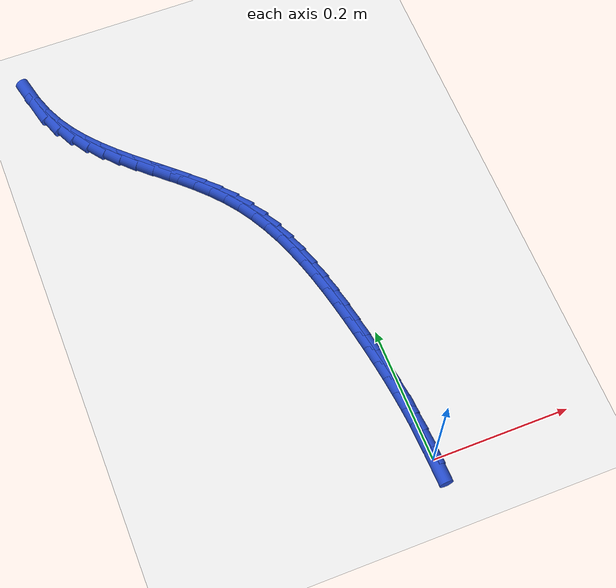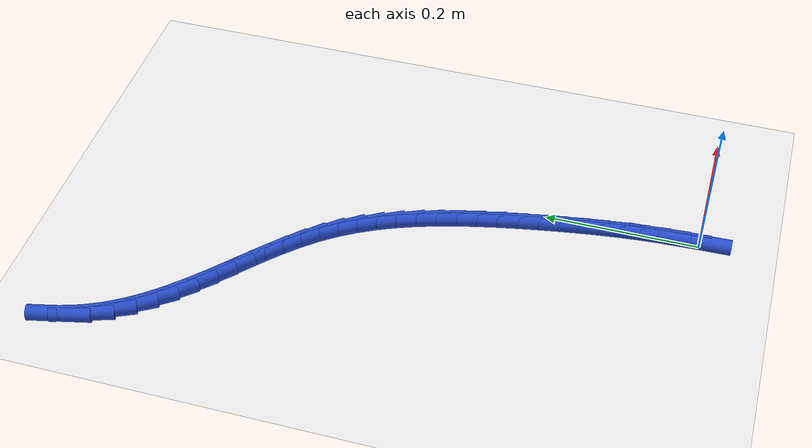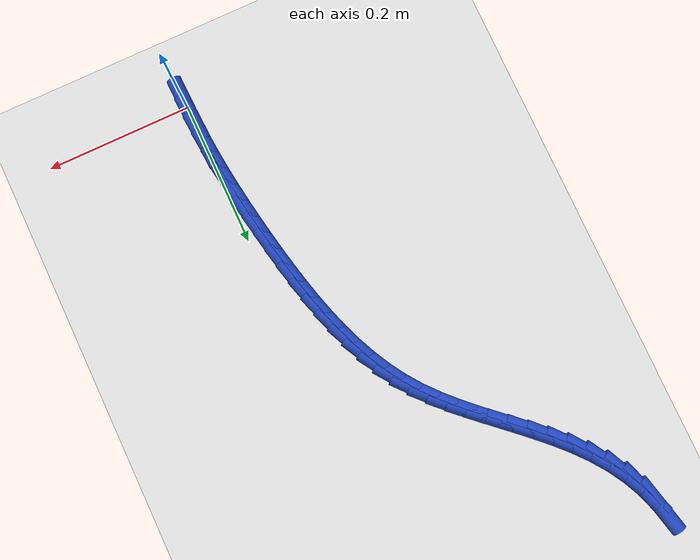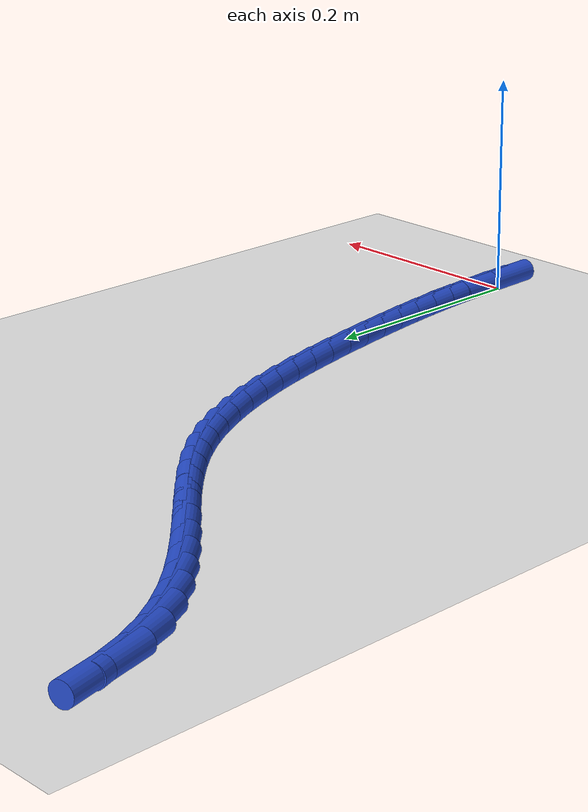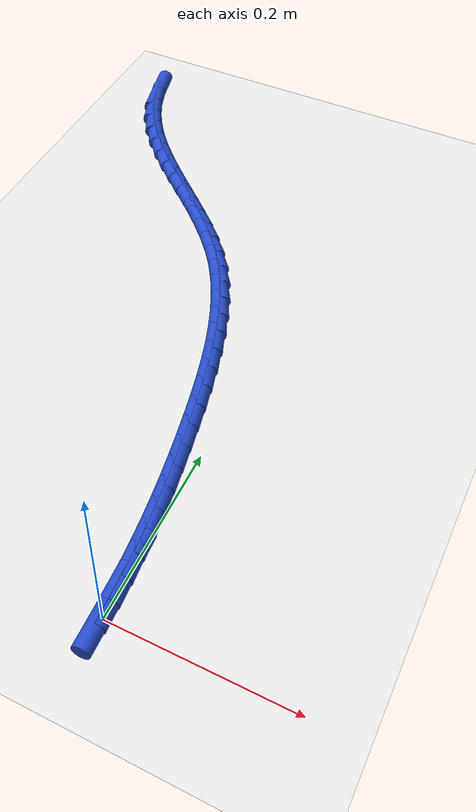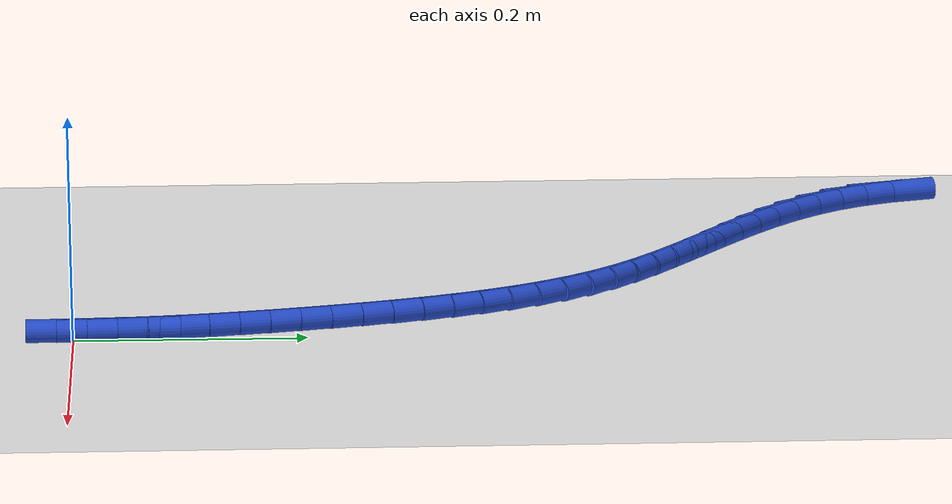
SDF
<sdf version="1.6">
 <world name="default">
  <model name="ground_plane">
   <static>1</static>
   <link name="link">
    <collision name="collision">
     <geometry><plane><normal>0 0 1</normal><size>100 100</size></plane></geometry>
     <surface><friction><ode><mu>100</mu><mu2>50</mu2></ode></friction></surface>
    </collision>
    <visual name="visual">
     <cast_shadows>0</cast_shadows>
     <geometry><plane><normal>0 0 1</normal><size>100 100</size></plane></geometry>
     <material>
      <script><uri>file://media/materials/scripts/gazebo.material</uri><name>Gazebo/WhiteGlow</name></script>
     </material>
    </visual>
   </link>
  </model>
  <model name="line">
   <link name="link_1">
    <pose>-0.0006734218720668165 0.025943897823569505 0.01 0 1.57 -1.5183345414615108</pose>
    <collision name="collision">
     <geometry><cylinder><radius>0.01</radius><length>0.08</length></cylinder></geometry>
    </collision>
    <visual name="visual">
     <material>
      <script><name>Gazebo/Blue</name><uri>file://media/materials/scripts/gazebo.material</uri></script>
     </material>
     <geometry><cylinder><radius>0.01</radius><length>0.08</length></cylinder></geometry>
    </visual>
   </link>
   <link name="link_2">
    <pose>-0.002030877806275513 0.051795293260185636 0.01 0 1.57 -1.4934831011588694</pose>
    <collision name="collision">
     <geometry><cylinder><radius>0.01</radius><length>0.08</length></cylinder></geometry>
    </collision>
    <visual name="visual">
     <material>
      <script><name>Gazebo/Blue</name><uri>file://media/materials/scripts/gazebo.material</uri></script>
     </material>
     <geometry><cylinder><radius>0.01</radius><length>0.08</length></cylinder></geometry>
    </visual>
   </link>
   <link name="link_3">
    <pose>-0.004028531694577257 0.0775822407005232 0.01 0 1.57 -1.4703987092895088</pose>
    <collision name="collision">
     <geometry><cylinder><radius>0.01</radius><length>0.08</length></cylinder></geometry>
    </collision>
    <visual name="visual">
     <material>
      <script><name>Gazebo/Blue</name><uri>file://media/materials/scripts/gazebo.material</uri></script>
     </material>
     <geometry><cylinder><radius>0.01</radius><length>0.08</length></cylinder></geometry>
    </visual>
   </link>
   <link name="link_4">
    <pose>-0.006622547428923207 0.10333279453525693 0.01 0 1.57 -1.4491669388248505</pose>
    <collision name="collision">
     <geometry><cylinder><radius>0.01</radius><length>0.08</length></cylinder></geometry>
    </collision>
    <visual name="visual">
     <material>
      <script><name>Gazebo/Blue</name><uri>file://media/materials/scripts/gazebo.material</uri></script>
     </material>
     <geometry><cylinder><radius>0.01</radius><length>0.08</length></cylinder></geometry>
    </visual>
   </link>
   <link name="link_5">
    <pose>-0.00976908890126453 0.1290750091550616 0.01 0 1.57 -1.4298521132547735</pose>
    <collision name="collision">
     <geometry><cylinder><radius>0.01</radius><length>0.08</length></cylinder></geometry>
    </collision>
    <visual name="visual">
     <material>
      <script><name>Gazebo/Blue</name><uri>file://media/materials/scripts/gazebo.material</uri></script>
     </material>
     <geometry><cylinder><radius>0.01</radius><length>0.08</length></cylinder></geometry>
    </visual>
   </link>
   <link name="link_6">
    <pose>-0.013424320003552398 0.15483693895061207 0.01 0 1.57 -1.4124987397937656</pose>
    <collision name="collision">
     <geometry><cylinder><radius>0.01</radius><length>0.08</length></cylinder></geometry>
    </collision>
    <visual name="visual">
     <material>
      <script><name>Gazebo/Blue</name><uri>file://media/materials/scripts/gazebo.material</uri></script>
     </material>
     <geometry><cylinder><radius>0.01</radius><length>0.08</length></cylinder></geometry>
    </visual>
   </link>
   <link name="link_7">
    <pose>-0.01754440462773796 0.180646638312583 0.01 0 1.57 -1.397133292789064</pose>
    <collision name="collision">
     <geometry><cylinder><radius>0.01</radius><length>0.08</length></cylinder></geometry>
    </collision>
    <visual name="visual">
     <material>
      <script><name>Gazebo/Blue</name><uri>file://media/materials/scripts/gazebo.material</uri></script>
     </material>
     <geometry><cylinder><radius>0.01</radius><length>0.08</length></cylinder></geometry>
    </visual>
   </link>
   <link name="link_8">
    <pose>-0.022085506665772393 0.20653216163164934 0.01 0 1.57 -1.3836915060591704</pose>
    <collision name="collision">
     <geometry><cylinder><radius>0.01</radius><length>0.08</length></cylinder></geometry>
    </collision>
    <visual name="visual">
     <material>
      <script><name>Gazebo/Blue</name><uri>file://media/materials/scripts/gazebo.material</uri></script>
     </material>
     <geometry><cylinder><radius>0.01</radius><length>0.08</length></cylinder></geometry>
    </visual>
   </link>
   <link name="link_9">
    <pose>-0.027005510231305995 0.23252003083410824 0.01 0 1.57 -1.368972413794788</pose>
    <collision name="collision">
     <geometry><cylinder><radius>0.01</radius><length>0.08</length></cylinder></geometry>
    </collision>
    <visual name="visual">
     <material>
      <script><name>Gazebo/Blue</name><uri>file://media/materials/scripts/gazebo.material</uri></script>
     </material>
     <geometry><cylinder><radius>0.01</radius><length>0.08</length></cylinder></geometry>
    </visual>
   </link>
   <link name="link_10">
    <pose>-0.0323358404977038 0.2585712535847264 0.01 0 1.57 -1.3485805054940045</pose>
    <collision name="collision">
     <geometry><cylinder><radius>0.01</radius><length>0.08</length></cylinder></geometry>
    </collision>
    <visual name="visual">
     <material>
      <script><name>Gazebo/Blue</name><uri>file://media/materials/scripts/gazebo.material</uri></script>
     </material>
     <geometry><cylinder><radius>0.01</radius><length>0.08</length></cylinder></geometry>
    </visual>
   </link>
   <link name="link_11">
    <pose>-0.03820750189583267 0.2845581270844244 0.01 0 1.57 -1.3220276555043413</pose>
    <collision name="collision">
     <geometry><cylinder><radius>0.01</radius><length>0.08</length></cylinder></geometry>
    </collision>
    <visual name="visual">
     <material>
      <script><name>Gazebo/Blue</name><uri>file://media/materials/scripts/gazebo.material</uri></script>
     </material>
     <geometry><cylinder><radius>0.01</radius><length>0.08</length></cylinder></geometry>
    </visual>
   </link>
   <link name="link_12">
    <pose>-0.044758577165378594 0.3103466428026448 0.01 0 1.57 -1.2890358217307072</pose>
    <collision name="collision">
     <geometry><cylinder><radius>0.01</radius><length>0.08</length></cylinder></geometry>
    </collision>
    <visual name="visual">
     <material>
      <script><name>Gazebo/Blue</name><uri>file://media/materials/scripts/gazebo.material</uri></script>
     </material>
     <geometry><cylinder><radius>0.01</radius><length>0.08</length></cylinder></geometry>
    </visual>
   </link>
   <link name="link_13">
    <pose>-0.0521271490460275 0.3358027922088299 0.01 0 1.57 -1.2492537222892313</pose>
    <collision name="collision">
     <geometry><cylinder><radius>0.01</radius><length>0.08</length></cylinder></geometry>
    </collision>
    <visual name="visual">
     <material>
      <script><name>Gazebo/Blue</name><uri>file://media/materials/scripts/gazebo.material</uri></script>
     </material>
     <geometry><cylinder><radius>0.01</radius><length>0.08</length></cylinder></geometry>
    </visual>
   </link>
   <link name="link_14">
    <pose>-0.0604513002774654 0.36079256677242244 0.01 0 1.57 -1.2022916803627839</pose>
    <collision name="collision">
     <geometry><cylinder><radius>0.01</radius><length>0.08</length></cylinder></geometry>
    </collision>
    <visual name="visual">
     <material>
      <script><name>Gazebo/Blue</name><uri>file://media/materials/scripts/gazebo.material</uri></script>
     </material>
     <geometry><cylinder><radius>0.01</radius><length>0.08</length></cylinder></geometry>
    </visual>
   </link>
   <link name="link_15">
    <pose>-0.06986911359937828 0.385181957962865 0.01 0 1.57 -1.1477733697549646</pose>
    <collision name="collision">
     <geometry><cylinder><radius>0.01</radius><length>0.08</length></cylinder></geometry>
    </collision>
    <visual name="visual">
     <material>
      <script><name>Gazebo/Blue</name><uri>file://media/materials/scripts/gazebo.material</uri></script>
     </material>
     <geometry><cylinder><radius>0.01</radius><length>0.08</length></cylinder></geometry>
    </visual>
   </link>
   <link name="link_16">
    <pose>-0.08051867175145208 0.4088369572495997 0.01 0 1.57 -1.085410235722841</pose>
    <collision name="collision">
     <geometry><cylinder><radius>0.01</radius><length>0.08</length></cylinder></geometry>
    </collision>
    <visual name="visual">
     <material>
      <script><name>Gazebo/Blue</name><uri>file://media/materials/scripts/gazebo.material</uri></script>
     </material>
     <geometry><cylinder><radius>0.01</radius><length>0.08</length></cylinder></geometry>
    </visual>
   </link>
   <link name="link_17">
    <pose>-0.09253805747337282 0.4316235561020696 0.01 0 1.57 -1.0151013114527625</pose>
    <collision name="collision">
     <geometry><cylinder><radius>0.01</radius><length>0.08</length></cylinder></geometry>
    </collision>
    <visual name="visual">
     <material>
      <script><name>Gazebo/Blue</name><uri>file://media/materials/scripts/gazebo.material</uri></script>
     </material>
     <geometry><cylinder><radius>0.01</radius><length>0.08</length></cylinder></geometry>
    </visual>
   </link>
   <link name="link_18">
    <pose>-0.10606535350482643 0.45340774598971684 0.01 0 1.57 -0.9373254929409379</pose>
    <collision name="collision">
     <geometry><cylinder><radius>0.01</radius><length>0.08</length></cylinder></geometry>
    </collision>
    <visual name="visual">
     <material>
      <script><name>Gazebo/Blue</name><uri>file://media/materials/scripts/gazebo.material</uri></script>
     </material>
     <geometry><cylinder><radius>0.01</radius><length>0.08</length></cylinder></geometry>
    </visual>
   </link>
   <link name="link_19">
    <pose>-0.12123320188538461 0.47405989148138417 0.01 0 1.57 -0.8628337482914706</pose>
    <collision name="collision">
     <geometry><cylinder><radius>0.01</radius><length>0.08</length></cylinder></geometry>
    </collision>
    <visual name="visual">
     <material>
      <script><name>Gazebo/Blue</name><uri>file://media/materials/scripts/gazebo.material</uri></script>
     </material>
     <geometry><cylinder><radius>0.01</radius><length>0.08</length></cylinder></geometry>
    </visual>
   </link>
   <link name="link_20">
    <pose>-0.13797107513092582 0.49361365975468136 0.01 0 1.57 -0.8050061343336946</pose>
    <collision name="collision">
     <geometry><cylinder><radius>0.01</radius><length>0.08</length></cylinder></geometry>
    </collision>
    <visual name="visual">
     <material>
      <script><name>Gazebo/Blue</name><uri>file://media/materials/scripts/gazebo.material</uri></script>
     </material>
     <geometry><cylinder><radius>0.01</radius><length>0.08</length></cylinder></geometry>
    </visual>
   </link>
   <link name="link_21">
    <pose>-0.15594924602411453 0.5123110562844987 0.01 0 1.57 -0.7644291066043009</pose>
    <collision name="collision">
     <geometry><cylinder><radius>0.01</radius><length>0.08</length></cylinder></geometry>
    </collision>
    <visual name="visual">
     <material>
      <script><name>Gazebo/Blue</name><uri>file://media/materials/scripts/gazebo.material</uri></script>
     </material>
     <geometry><cylinder><radius>0.01</radius><length>0.08</length></cylinder></geometry>
    </visual>
   </link>
   <link name="link_22">
    <pose>-0.17482113180917527 0.530407634608199 0.01 0 1.57 -0.7405616900080769</pose>
    <collision name="collision">
     <geometry><cylinder><radius>0.01</radius><length>0.08</length></cylinder></geometry>
    </collision>
    <visual name="visual">
     <material>
      <script><name>Gazebo/Blue</name><uri>file://media/materials/scripts/gazebo.material</uri></script>
     </material>
     <geometry><cylinder><radius>0.01</radius><length>0.08</length></cylinder></geometry>
    </visual>
   </link>
   <link name="link_23">
    <pose>-0.19424014973033246 0.5481589482631446 0.01 0 1.57 -0.7329275036203929</pose>
    <collision name="collision">
     <geometry><cylinder><radius>0.01</radius><length>0.08</length></cylinder></geometry>
    </collision>
    <visual name="visual">
     <material>
      <script><name>Gazebo/Blue</name><uri>file://media/materials/scripts/gazebo.material</uri></script>
     </material>
     <geometry><cylinder><radius>0.01</radius><length>0.08</length></cylinder></geometry>
    </visual>
   </link>
   <link name="link_24">
    <pose>-0.21385971703181053 0.5658205507866981 0.01 0 1.57 -0.7412968626940298</pose>
    <collision name="collision">
     <geometry><cylinder><radius>0.01</radius><length>0.08</length></cylinder></geometry>
    </collision>
    <visual name="visual">
     <material>
      <script><name>Gazebo/Blue</name><uri>file://media/materials/scripts/gazebo.material</uri></script>
     </material>
     <geometry><cylinder><radius>0.01</radius><length>0.08</length></cylinder></geometry>
    </visual>
   </link>
   <link name="link_25">
    <pose>-0.233333250957834 0.583647995716222 0.01 0 1.57 -0.7657369403799325</pose>
    <collision name="collision">
     <geometry><cylinder><radius>0.01</radius><length>0.08</length></cylinder></geometry>
    </collision>
    <visual name="visual">
     <material>
      <script><name>Gazebo/Blue</name><uri>file://media/materials/scripts/gazebo.material</uri></script>
     </material>
     <geometry><cylinder><radius>0.01</radius><length>0.08</length></cylinder></geometry>
    </visual>
   </link>
   <link name="link_26">
    <pose>-0.25231416875262735 0.601896836589079 0.01 0 1.57 -0.8065475352843584</pose>
    <collision name="collision">
     <geometry><cylinder><radius>0.01</radius><length>0.08</length></cylinder></geometry>
    </collision>
    <visual name="visual">
     <material>
      <script><name>Gazebo/Blue</name><uri>file://media/materials/scripts/gazebo.material</uri></script>
     </material>
     <geometry><cylinder><radius>0.01</radius><length>0.08</length></cylinder></geometry>
    </visual>
   </link>
   <link name="link_27">
    <pose>-0.270455887660415 0.6208226269426316 0.01 0 1.57 -0.8640733188638222</pose>
    <collision name="collision">
     <geometry><cylinder><radius>0.01</radius><length>0.08</length></cylinder></geometry>
    </collision>
    <visual name="visual">
     <material>
      <script><name>Gazebo/Blue</name><uri>file://media/materials/scripts/gazebo.material</uri></script>
     </material>
     <geometry><cylinder><radius>0.01</radius><length>0.08</length></cylinder></geometry>
    </visual>
   </link>
   <link name="link_28">
    <pose>-0.28741182492542144 0.6406809203142421 0.01 0 1.57 -0.9383694341646547</pose>
    <collision name="collision">
     <geometry><cylinder><radius>0.01</radius><length>0.08</length></cylinder></geometry>
    </collision>
    <visual name="visual">
     <material>
      <script><name>Gazebo/Blue</name><uri>file://media/materials/scripts/gazebo.material</uri></script>
     </material>
     <geometry><cylinder><radius>0.01</radius><length>0.08</length></cylinder></geometry>
    </visual>
   </link>
   <link name="link_29">
    <pose>-0.30283539779187113 0.6617272702412733 0.01 0 1.57 -1.028722513832776</pose>
    <collision name="collision">
     <geometry><cylinder><radius>0.01</radius><length>0.08</length></cylinder></geometry>
    </collision>
    <visual name="visual">
     <material>
      <script><name>Gazebo/Blue</name><uri>file://media/materials/scripts/gazebo.material</uri></script>
     </material>
     <geometry><cylinder><radius>0.01</radius><length>0.08</length></cylinder></geometry>
    </visual>
   </link>
   <link name="link_30">
    <pose>-0.31638002350398864 0.6842172302610879 0.01 0 1.57 -1.133122792511532</pose>
    <collision name="collision">
     <geometry><cylinder><radius>0.01</radius><length>0.08</length></cylinder></geometry>
    </collision>
    <visual name="visual">
     <material>
      <script><name>Gazebo/Blue</name><uri>file://media/materials/scripts/gazebo.material</uri></script>
     </material>
     <geometry><cylinder><radius>0.01</radius><length>0.08</length></cylinder></geometry>
    </visual>
   </link>
   <link name="link_31">
    <pose>-0.3276991193059984 0.7084063539110481 0.01 0 1.57 -1.2474060621924192</pose>
    <collision name="collision">
     <geometry><cylinder><radius>0.01</radius><length>0.08</length></cylinder></geometry>
    </collision>
    <visual name="visual">
     <material>
      <script><name>Gazebo/Blue</name><uri>file://media/materials/scripts/gazebo.material</uri></script>
     </material>
     <geometry><cylinder><radius>0.01</radius><length>0.08</length></cylinder></geometry>
    </visual>
   </link>
   <link name="link_32">
    <pose>-0.3364576573358799 0.7345390562323103 0.01 0 1.57 -1.3432105040270967</pose>
    <collision name="collision">
     <geometry><cylinder><radius>0.01</radius><length>0.08</length></cylinder></geometry>
    </collision>
    <visual name="visual">
     <material>
      <script><name>Gazebo/Blue</name><uri>file://media/materials/scripts/gazebo.material</uri></script>
     </material>
     <geometry><cylinder><radius>0.01</radius><length>0.08</length></cylinder></geometry>
    </visual>
   </link>
   <link name="link_280">
    <pose>-1.3010426069826053e-18 1.0408340855860843e-16 0.01 0 1.57 -1.5445971135605592</pose>
    <collision name="collision">
     <geometry><cylinder><radius>0.01</radius><length>0.08</length></cylinder></geometry>
    </collision>
    <visual name="visual">
     <material>
      <script><name>Gazebo/Blue</name><uri>file://media/materials/scripts/gazebo.material</uri></script>
     </material>
     <geometry><cylinder><radius>0.01</radius><length>0.08</length></cylinder></geometry>
    </visual>
   </link>
   <link name="link_281">
    <pose>-0.0006794985919042667 0.025929905211772745 0.01 0 1.57 -1.5164883991178904</pose>
    <collision name="collision">
     <geometry><cylinder><radius>0.01</radius><length>0.08</length></cylinder></geometry>
    </collision>
    <visual name="visual">
     <material>
      <script><name>Gazebo/Blue</name><uri>file://media/materials/scripts/gazebo.material</uri></script>
     </material>
     <geometry><cylinder><radius>0.01</radius><length>0.08</length></cylinder></geometry>
    </visual>
   </link>
   <link name="link_282">
    <pose>-0.002079491564975111 0.051683352365811314 0.01 0 1.57 -1.5305827877384606</pose>
    <collision name="collision">
     <geometry><cylinder><radius>0.01</radius><length>0.08</length></cylinder></geometry>
    </collision>
    <visual name="visual">
     <material>
      <script><name>Gazebo/Blue</name><uri>file://media/materials/scripts/gazebo.material</uri></script>
     </material>
     <geometry><cylinder><radius>0.01</radius><length>0.08</length></cylinder></geometry>
    </visual>
   </link>
  </model>
 </world>
</sdf>
